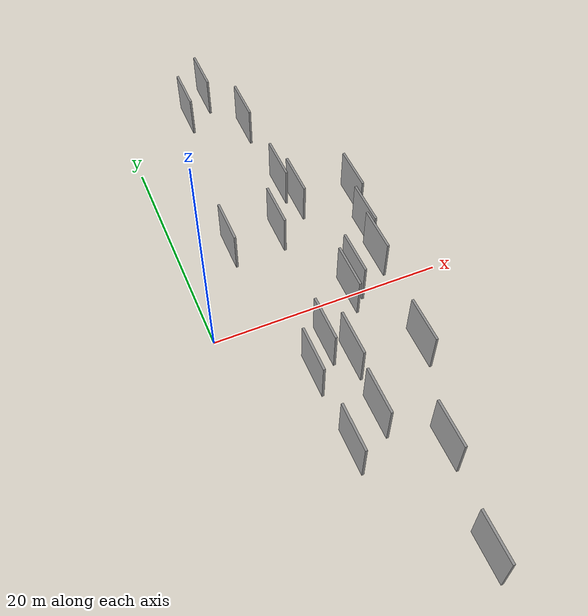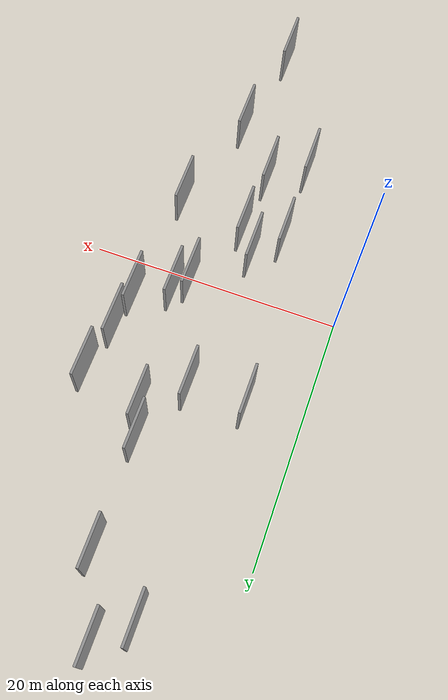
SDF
<sdf version="1.6">
 <world name="default">
  <scene>
   <sky><clouds><speed>12</speed></clouds></sky>
   <ambient>0.4 0.4 0.4 1</ambient>
   <background>0.7 0.7 0.7 1</background>
   <shadows>1</shadows>
  </scene>
  <gravity>0 0 -9.8066</gravity>
  <magnetic_field>6e-06 2.3e-05 -4.2e-05</magnetic_field>
  <physics default="0" name="default_physics" type="ode">
   <ode>
    <solver>
     <type>quick</type>
     <iters>10</iters>
     <sor>1.0</sor>
     <use_dynamic_moi_rescaling>0</use_dynamic_moi_rescaling>
    </solver>
    <constraints>
     <cfm>0</cfm>
     <erp>0.2</erp>
     <contact_max_correcting_vel>100</contact_max_correcting_vel>
     <contact_surface_layer>0.001</contact_surface_layer>
    </constraints>
   </ode>
   <max_step_size>0.004</max_step_size>
   <real_time_factor>1</real_time_factor>
   <real_time_update_rate>250</real_time_update_rate>
  </physics>
  <light name="sun" type="directional">
   <pose>0 0 10 0 0 0</pose>
   <diffuse>0.8 0.8 0.8 1</diffuse>
   <specular>0.2 0.2 0.2 1</specular>
   <attenuation>
    <range>1000</range>
    <constant>0.9</constant>
    <linear>0.01</linear>
    <quadratic>0.001</quadratic>
   </attenuation>
   <direction>-0.5 0.1 -0.9</direction>
  </light>
  <model name="grey_wall_1">
   <static>1</static>
   <pose>9.1122 -10.9513 0.0 0.000000 0.000000 1.570796</pose>
   <link name="link">
    <pose>0 0 2.00 0 0 0</pose>
    <collision name="collision"><geometry><box><size>4.00 0.2 4.00</size></box></geometry></collision>
    <visual name="visual">
     <cast_shadows>0</cast_shadows>
     <geometry><box><size>4.00 0.2 4.00</size></box></geometry>
     <material>
      <script>
       <uri>model://grey_wall/materials/scripts</uri>
       <uri>model://grey_wall/materials/textures</uri>
       <name>vrc/grey_wall</name>
      </script>
     </material>
    </visual>
   </link>
  </model>
  <model name="grey_wall_2">
   <static>1</static>
   <pose>6.4511 25.8062 0.0 0.000000 0.000000 1.570796</pose>
   <link name="link">
    <pose>0 0 2.00 0 0 0</pose>
    <collision name="collision"><geometry><box><size>4.00 0.2 4.00</size></box></geometry></collision>
    <visual name="visual">
     <cast_shadows>0</cast_shadows>
     <geometry><box><size>4.00 0.2 4.00</size></box></geometry>
     <material>
      <script>
       <uri>model://grey_wall/materials/scripts</uri>
       <uri>model://grey_wall/materials/textures</uri>
       <name>vrc/grey_wall</name>
      </script>
     </material>
    </visual>
   </link>
  </model>
  <model name="grey_wall_3">
   <static>1</static>
   <pose>6.1203 -5.8459 0.0 0.000000 0.000000 1.570796</pose>
   <link name="link">
    <pose>0 0 2.00 0 0 0</pose>
    <collision name="collision"><geometry><box><size>4.00 0.2 4.00</size></box></geometry></collision>
    <visual name="visual">
     <cast_shadows>0</cast_shadows>
     <geometry><box><size>4.00 0.2 4.00</size></box></geometry>
     <material>
      <script>
       <uri>model://grey_wall/materials/scripts</uri>
       <uri>model://grey_wall/materials/textures</uri>
       <name>vrc/grey_wall</name>
      </script>
     </material>
    </visual>
   </link>
  </model>
  <model name="grey_wall_4">
   <static>1</static>
   <pose>6.1433 -12.8786 0.0 0.000000 0.000000 1.570796</pose>
   <link name="link">
    <pose>0 0 2.00 0 0 0</pose>
    <collision name="collision"><geometry><box><size>4.00 0.2 4.00</size></box></geometry></collision>
    <visual name="visual">
     <cast_shadows>0</cast_shadows>
     <geometry><box><size>4.00 0.2 4.00</size></box></geometry>
     <material>
      <script>
       <uri>model://grey_wall/materials/scripts</uri>
       <uri>model://grey_wall/materials/textures</uri>
       <name>vrc/grey_wall</name>
      </script>
     </material>
    </visual>
   </link>
  </model>
  <model name="grey_wall_5">
   <static>1</static>
   <pose>8.8582 27.8732 0.0 0.000000 0.000000 1.570796</pose>
   <link name="link">
    <pose>0 0 2.00 0 0 0</pose>
    <collision name="collision"><geometry><box><size>4.00 0.2 4.00</size></box></geometry></collision>
    <visual name="visual">
     <cast_shadows>0</cast_shadows>
     <geometry><box><size>4.00 0.2 4.00</size></box></geometry>
     <material>
      <script>
       <uri>model://grey_wall/materials/scripts</uri>
       <uri>model://grey_wall/materials/textures</uri>
       <name>vrc/grey_wall</name>
      </script>
     </material>
    </visual>
   </link>
  </model>
  <model name="grey_wall_6">
   <static>1</static>
   <pose>15.7544 2.8239 0.0 0.000000 0.000000 1.570796</pose>
   <link name="link">
    <pose>0 0 2.00 0 0 0</pose>
    <collision name="collision"><geometry><box><size>4.00 0.2 4.00</size></box></geometry></collision>
    <visual name="visual">
     <cast_shadows>0</cast_shadows>
     <geometry><box><size>4.00 0.2 4.00</size></box></geometry>
     <material>
      <script>
       <uri>model://grey_wall/materials/scripts</uri>
       <uri>model://grey_wall/materials/textures</uri>
       <name>vrc/grey_wall</name>
      </script>
     </material>
    </visual>
   </link>
  </model>
  <model name="grey_wall_7">
   <static>1</static>
   <pose>11.3487 -23.5679 0.0 0.000000 0.000000 1.570796</pose>
   <link name="link">
    <pose>0 0 2.00 0 0 0</pose>
    <collision name="collision"><geometry><box><size>4.00 0.2 4.00</size></box></geometry></collision>
    <visual name="visual">
     <cast_shadows>0</cast_shadows>
     <geometry><box><size>4.00 0.2 4.00</size></box></geometry>
     <material>
      <script>
       <uri>model://grey_wall/materials/scripts</uri>
       <uri>model://grey_wall/materials/textures</uri>
       <name>vrc/grey_wall</name>
      </script>
     </material>
    </visual>
   </link>
  </model>
  <model name="grey_wall_8">
   <static>1</static>
   <pose>11.0729 22.2976 0.0 0.000000 0.000000 1.570796</pose>
   <link name="link">
    <pose>0 0 2.00 0 0 0</pose>
    <collision name="collision"><geometry><box><size>4.00 0.2 4.00</size></box></geometry></collision>
    <visual name="visual">
     <cast_shadows>0</cast_shadows>
     <geometry><box><size>4.00 0.2 4.00</size></box></geometry>
     <material>
      <script>
       <uri>model://grey_wall/materials/scripts</uri>
       <uri>model://grey_wall/materials/textures</uri>
       <name>vrc/grey_wall</name>
      </script>
     </material>
    </visual>
   </link>
  </model>
  <model name="grey_wall_9">
   <static>1</static>
   <pose>9.4863 -5.6898 0.0 0.000000 0.000000 1.570796</pose>
   <link name="link">
    <pose>0 0 2.00 0 0 0</pose>
    <collision name="collision"><geometry><box><size>4.00 0.2 4.00</size></box></geometry></collision>
    <visual name="visual">
     <cast_shadows>0</cast_shadows>
     <geometry><box><size>4.00 0.2 4.00</size></box></geometry>
     <material>
      <script>
       <uri>model://grey_wall/materials/scripts</uri>
       <uri>model://grey_wall/materials/textures</uri>
       <name>vrc/grey_wall</name>
      </script>
     </material>
    </visual>
   </link>
  </model>
  <model name="grey_wall_10">
   <static>1</static>
   <pose>4.4625 8.5252 0.0 0.000000 0.000000 1.570796</pose>
   <link name="link">
    <pose>0 0 2.00 0 0 0</pose>
    <collision name="collision"><geometry><box><size>4.00 0.2 4.00</size></box></geometry></collision>
    <visual name="visual">
     <cast_shadows>0</cast_shadows>
     <geometry><box><size>4.00 0.2 4.00</size></box></geometry>
     <material>
      <script>
       <uri>model://grey_wall/materials/scripts</uri>
       <uri>model://grey_wall/materials/textures</uri>
       <name>vrc/grey_wall</name>
      </script>
     </material>
    </visual>
   </link>
  </model>
  <model name="grey_wall_11">
   <static>1</static>
   <pose>16.8838 9.9721 0.0 0.000000 0.000000 1.570796</pose>
   <link name="link">
    <pose>0 0 2.00 0 0 0</pose>
    <collision name="collision"><geometry><box><size>4.00 0.2 4.00</size></box></geometry></collision>
    <visual name="visual">
     <cast_shadows>0</cast_shadows>
     <geometry><box><size>4.00 0.2 4.00</size></box></geometry>
     <material>
      <script>
       <uri>model://grey_wall/materials/scripts</uri>
       <uri>model://grey_wall/materials/textures</uri>
       <name>vrc/grey_wall</name>
      </script>
     </material>
    </visual>
   </link>
  </model>
  <model name="grey_wall_12">
   <static>1</static>
   <pose>8.9987 8.6689 0.0 0.000000 0.000000 1.570796</pose>
   <link name="link">
    <pose>0 0 2.00 0 0 0</pose>
    <collision name="collision"><geometry><box><size>4.00 0.2 4.00</size></box></geometry></collision>
    <visual name="visual">
     <cast_shadows>0</cast_shadows>
     <geometry><box><size>4.00 0.2 4.00</size></box></geometry>
     <material>
      <script>
       <uri>model://grey_wall/materials/scripts</uri>
       <uri>model://grey_wall/materials/textures</uri>
       <name>vrc/grey_wall</name>
      </script>
     </material>
    </visual>
   </link>
  </model>
  <model name="grey_wall_13">
   <static>1</static>
   <pose>11.2424 13.7231 0.0 0.000000 0.000000 1.570796</pose>
   <link name="link">
    <pose>0 0 2.00 0 0 0</pose>
    <collision name="collision"><geometry><box><size>4.00 0.2 4.00</size></box></geometry></collision>
    <visual name="visual">
     <cast_shadows>0</cast_shadows>
     <geometry><box><size>4.00 0.2 4.00</size></box></geometry>
     <material>
      <script>
       <uri>model://grey_wall/materials/scripts</uri>
       <uri>model://grey_wall/materials/textures</uri>
       <name>vrc/grey_wall</name>
      </script>
     </material>
    </visual>
   </link>
  </model>
  <model name="grey_wall_14">
   <static>1</static>
   <pose>11.9722 0.2059 0.0 0.000000 0.000000 1.570796</pose>
   <link name="link">
    <pose>0 0 2.00 0 0 0</pose>
    <collision name="collision"><geometry><box><size>4.00 0.2 4.00</size></box></geometry></collision>
    <visual name="visual">
     <cast_shadows>0</cast_shadows>
     <geometry><box><size>4.00 0.2 4.00</size></box></geometry>
     <material>
      <script>
       <uri>model://grey_wall/materials/scripts</uri>
       <uri>model://grey_wall/materials/textures</uri>
       <name>vrc/grey_wall</name>
      </script>
     </material>
    </visual>
   </link>
  </model>
  <model name="grey_wall_15">
   <static>1</static>
   <pose>16.1326 5.8992 0.0 0.000000 0.000000 1.570796</pose>
   <link name="link">
    <pose>0 0 2.00 0 0 0</pose>
    <collision name="collision"><geometry><box><size>4.00 0.2 4.00</size></box></geometry></collision>
    <visual name="visual">
     <cast_shadows>0</cast_shadows>
     <geometry><box><size>4.00 0.2 4.00</size></box></geometry>
     <material>
      <script>
       <uri>model://grey_wall/materials/scripts</uri>
       <uri>model://grey_wall/materials/textures</uri>
       <name>vrc/grey_wall</name>
      </script>
     </material>
    </visual>
   </link>
  </model>
  <model name="grey_wall_16">
   <static>1</static>
   <pose>11.9449 11.3488 0.0 0.000000 0.000000 1.570796</pose>
   <link name="link">
    <pose>0 0 2.00 0 0 0</pose>
    <collision name="collision"><geometry><box><size>4.00 0.2 4.00</size></box></geometry></collision>
    <visual name="visual">
     <cast_shadows>0</cast_shadows>
     <geometry><box><size>4.00 0.2 4.00</size></box></geometry>
     <material>
      <script>
       <uri>model://grey_wall/materials/scripts</uri>
       <uri>model://grey_wall/materials/textures</uri>
       <name>vrc/grey_wall</name>
      </script>
     </material>
    </visual>
   </link>
  </model>
  <model name="grey_wall_17">
   <static>1</static>
   <pose>15.0533 -6.7389 0.0 0.000000 0.000000 1.570796</pose>
   <link name="link">
    <pose>0 0 2.00 0 0 0</pose>
    <collision name="collision"><geometry><box><size>4.00 0.2 4.00</size></box></geometry></collision>
    <visual name="visual">
     <cast_shadows>0</cast_shadows>
     <geometry><box><size>4.00 0.2 4.00</size></box></geometry>
     <material>
      <script>
       <uri>model://grey_wall/materials/scripts</uri>
       <uri>model://grey_wall/materials/textures</uri>
       <name>vrc/grey_wall</name>
      </script>
     </material>
    </visual>
   </link>
  </model>
  <model name="grey_wall_18">
   <static>1</static>
   <pose>12.9697 1.3171 0.0 0.000000 0.000000 1.570796</pose>
   <link name="link">
    <pose>0 0 2.00 0 0 0</pose>
    <collision name="collision"><geometry><box><size>4.00 0.2 4.00</size></box></geometry></collision>
    <visual name="visual">
     <cast_shadows>0</cast_shadows>
     <geometry><box><size>4.00 0.2 4.00</size></box></geometry>
     <material>
      <script>
       <uri>model://grey_wall/materials/scripts</uri>
       <uri>model://grey_wall/materials/textures</uri>
       <name>vrc/grey_wall</name>
      </script>
     </material>
    </visual>
   </link>
  </model>
  <model name="grey_wall_19">
   <static>1</static>
   <pose>8.0889 -3.6582 0.0 0.000000 0.000000 1.570796</pose>
   <link name="link">
    <pose>0 0 2.00 0 0 0</pose>
    <collision name="collision"><geometry><box><size>4.00 0.2 4.00</size></box></geometry></collision>
    <visual name="visual">
     <cast_shadows>0</cast_shadows>
     <geometry><box><size>4.00 0.2 4.00</size></box></geometry>
     <material>
      <script>
       <uri>model://grey_wall/materials/scripts</uri>
       <uri>model://grey_wall/materials/textures</uri>
       <name>vrc/grey_wall</name>
      </script>
     </material>
    </visual>
   </link>
  </model>
  <model name="grey_wall_20">
   <static>1</static>
   <pose>12.6264 -15.2963 0.0 0.000000 0.000000 1.570796</pose>
   <link name="link">
    <pose>0 0 2.00 0 0 0</pose>
    <collision name="collision"><geometry><box><size>4.00 0.2 4.00</size></box></geometry></collision>
    <visual name="visual">
     <cast_shadows>0</cast_shadows>
     <geometry><box><size>4.00 0.2 4.00</size></box></geometry>
     <material>
      <script>
       <uri>model://grey_wall/materials/scripts</uri>
       <uri>model://grey_wall/materials/textures</uri>
       <name>vrc/grey_wall</name>
      </script>
     </material>
    </visual>
   </link>
  </model>
 </world>
</sdf>
